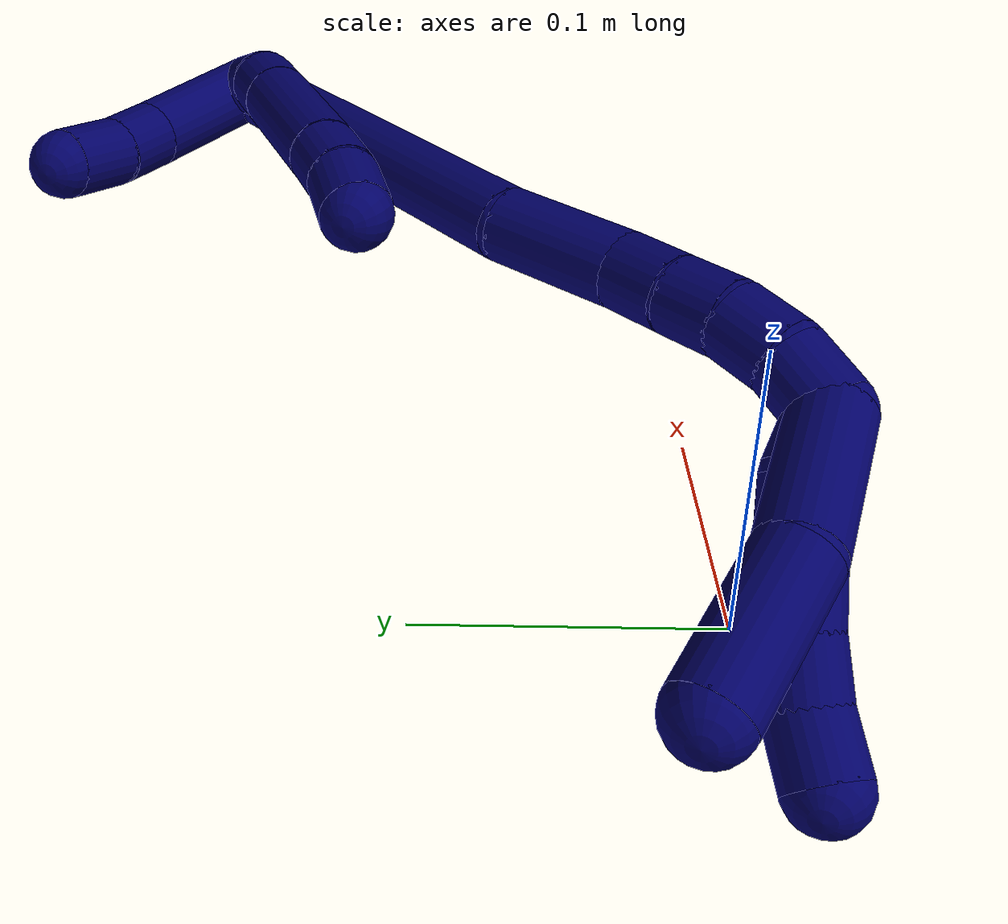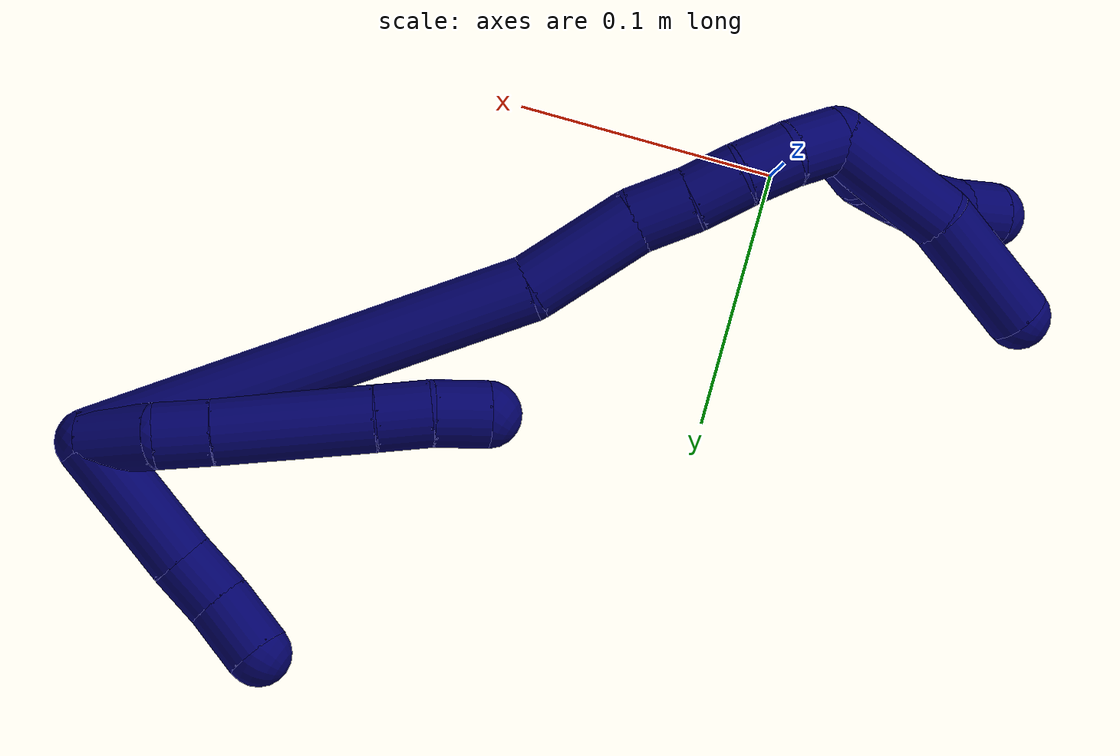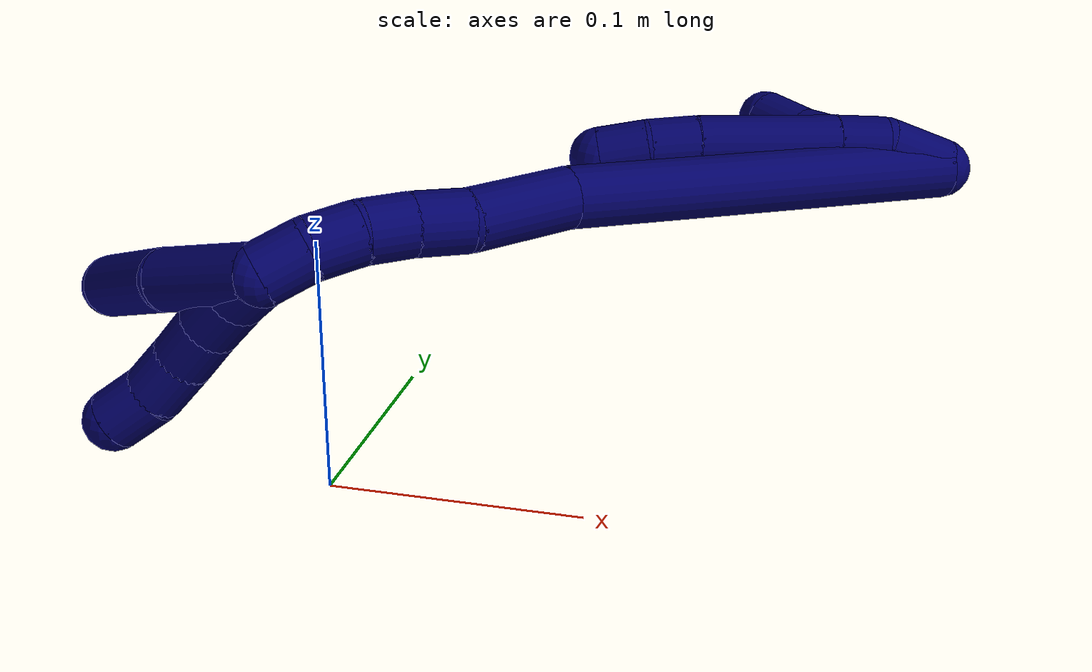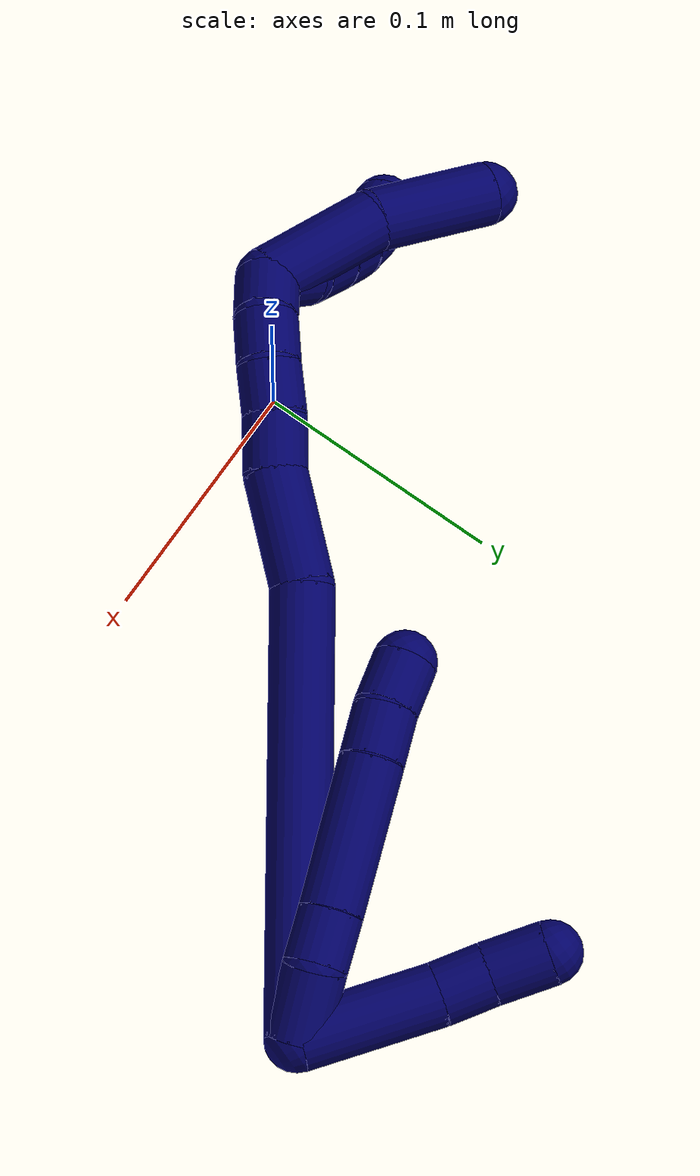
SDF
<sdf version="1.7">
 <world name="default">
  <model name="7">
   <static>0</static>
   <link name="7">
    <collision name="collision-cylinder-e_1_2_8">
     <pose>0.001461 -0.009329 0.01038 0.732112 0.104283 0.040006</pose>
     <geometry><cylinder><radius>0.0125</radius><length>0.028065</length></cylinder></geometry>
     <surface>
      <friction><ode><mu>1.16</mu><mu2>1.16</mu2><slip1>0</slip1><slip2>0</slip2></ode></friction>
      <contact><ode><kp>1e+06</kp><kd>1</kd><max_vel>0</max_vel><min_depth>0.001</min_depth></ode></contact>
     </surface>
    </collision>
    <visual name="visual-cylinder-e_1_2_8">
     <pose>0.001461 -0.009329 0.01038 0.732112 0.104283 0.040006</pose>
     <geometry><cylinder><radius>0.0125</radius><length>0.028065</length></cylinder></geometry>
     <material><ambient>0.003922 0 0.403922 1</ambient></material>
    </visual>
    <collision name="collision-cylinder-e_2_8_9">
     <pose>0.000745 -0.02474 0.029128 0.628512 -0.207389 -0.067624</pose>
     <geometry><cylinder><radius>0.0125</radius><length>0.02114</length></cylinder></geometry>
     <surface>
      <friction><ode><mu>1.16</mu><mu2>1.16</mu2><slip1>0</slip1><slip2>0</slip2></ode></friction>
      <contact><ode><kp>1e+06</kp><kd>1</kd><max_vel>0</max_vel><min_depth>0.001</min_depth></ode></contact>
     </surface>
    </collision>
    <visual name="visual-cylinder-e_2_8_9">
     <pose>0.000745 -0.02474 0.029128 0.628512 -0.207389 -0.067624</pose>
     <geometry><cylinder><radius>0.0125</radius><length>0.02114</length></cylinder></geometry>
     <material><ambient>0.003922 0 0.403922 1</ambient></material>
    </visual>
    <collision name="collision-cylinder-e_3_9_10">
     <pose>-0.008649 -0.047895 0.060733 0.63367 -0.245253 -0.080775</pose>
     <geometry><cylinder><radius>0.0125</radius><length>0.059451</length></cylinder></geometry>
     <surface>
      <friction><ode><mu>1.16</mu><mu2>1.16</mu2><slip1>0</slip1><slip2>0</slip2></ode></friction>
      <contact><ode><kp>1e+06</kp><kd>1</kd><max_vel>0</max_vel><min_depth>0.001</min_depth></ode></contact>
     </surface>
    </collision>
    <visual name="visual-cylinder-e_3_9_10">
     <pose>-0.008649 -0.047895 0.060733 0.63367 -0.245253 -0.080775</pose>
     <geometry><cylinder><radius>0.0125</radius><length>0.059451</length></cylinder></geometry>
     <material><ambient>0.003922 0 0.403922 1</ambient></material>
    </visual>
    <collision name="collision-cylinder-e_4_10_11">
     <pose>-0.019061 -0.070705 0.091944 0.623568 -0.314417 -0.10209</pose>
     <geometry><cylinder><radius>0.0125</radius><length>0.020657</length></cylinder></geometry>
     <surface>
      <friction><ode><mu>1.16</mu><mu2>1.16</mu2><slip1>0</slip1><slip2>0</slip2></ode></friction>
      <contact><ode><kp>1e+06</kp><kd>1</kd><max_vel>0</max_vel><min_depth>0.001</min_depth></ode></contact>
     </surface>
    </collision>
    <visual name="visual-cylinder-e_4_10_11">
     <pose>-0.019061 -0.070705 0.091944 0.623568 -0.314417 -0.10209</pose>
     <geometry><cylinder><radius>0.0125</radius><length>0.020657</length></cylinder></geometry>
     <material><ambient>0.003922 0 0.403922 1</ambient></material>
    </visual>
    <collision name="collision-cylinder-e_5_11_6">
     <pose>-0.026263 -0.080793 0.108401 0.474096 -0.397952 -0.097354</pose>
     <geometry><cylinder><radius>0.0125</radius><length>0.020686</length></cylinder></geometry>
     <surface>
      <friction><ode><mu>1.16</mu><mu2>1.16</mu2><slip1>0</slip1><slip2>0</slip2></ode></friction>
      <contact><ode><kp>1e+06</kp><kd>1</kd><max_vel>0</max_vel><min_depth>0.001</min_depth></ode></contact>
     </surface>
    </collision>
    <visual name="visual-cylinder-e_5_11_6">
     <pose>-0.026263 -0.080793 0.108401 0.474096 -0.397952 -0.097354</pose>
     <geometry><cylinder><radius>0.0125</radius><length>0.020686</length></cylinder></geometry>
     <material><ambient>0.003922 0 0.403922 1</ambient></material>
    </visual>
    <collision name="collision-cylinder-e_1_2_12">
     <pose>0.000627 0.008884 0.026182 -0.327133 0.022686 -0.003744</pose>
     <geometry><cylinder><radius>0.0125</radius><length>0.055311</length></cylinder></geometry>
     <surface>
      <friction><ode><mu>1.16</mu><mu2>1.16</mu2><slip1>0</slip1><slip2>0</slip2></ode></friction>
      <contact><ode><kp>1e+06</kp><kd>1</kd><max_vel>0</max_vel><min_depth>0.001</min_depth></ode></contact>
     </surface>
    </collision>
    <visual name="visual-cylinder-e_1_2_12">
     <pose>0.000627 0.008884 0.026182 -0.327133 0.022686 -0.003744</pose>
     <geometry><cylinder><radius>0.0125</radius><length>0.055311</length></cylinder></geometry>
     <material><ambient>0.003922 0 0.403922 1</ambient></material>
    </visual>
    <collision name="collision-cylinder-e_2_12_13">
     <pose>0.001822 0.020261 0.06228 -0.246264 0.055426 -0.006861</pose>
     <geometry><cylinder><radius>0.0125</radius><length>0.020479</length></cylinder></geometry>
     <surface>
      <friction><ode><mu>1.16</mu><mu2>1.16</mu2><slip1>0</slip1><slip2>0</slip2></ode></friction>
      <contact><ode><kp>1e+06</kp><kd>1</kd><max_vel>0</max_vel><min_depth>0.001</min_depth></ode></contact>
     </surface>
    </collision>
    <visual name="visual-cylinder-e_2_12_13">
     <pose>0.001822 0.020261 0.06228 -0.246264 0.055426 -0.006861</pose>
     <geometry><cylinder><radius>0.0125</radius><length>0.020479</length></cylinder></geometry>
     <material><ambient>0.003922 0 0.403922 1</ambient></material>
    </visual>
    <collision name="collision-cylinder-e_3_13_5">
     <pose>0.00468 0.0259 0.083657 -0.267942 0.190382 -0.025736</pose>
     <geometry><cylinder><radius>0.0125</radius><length>0.02421</length></cylinder></geometry>
     <surface>
      <friction><ode><mu>1.16</mu><mu2>1.16</mu2><slip1>0</slip1><slip2>0</slip2></ode></friction>
      <contact><ode><kp>1e+06</kp><kd>1</kd><max_vel>0</max_vel><min_depth>0.001</min_depth></ode></contact>
     </surface>
    </collision>
    <visual name="visual-cylinder-e_3_13_5">
     <pose>0.00468 0.0259 0.083657 -0.267942 0.190382 -0.025736</pose>
     <geometry><cylinder><radius>0.0125</radius><length>0.02421</length></cylinder></geometry>
     <material><ambient>0.003922 0 0.403922 1</ambient></material>
    </visual>
    <collision name="collision-cylinder-e_1_2_14">
     <pose>-0.024477 -0.064038 0.051856 0.890125 -0.288744 -0.138469</pose>
     <geometry><cylinder><radius>0.0125</radius><length>0.171918</length></cylinder></geometry>
     <surface>
      <friction><ode><mu>1.16</mu><mu2>1.16</mu2><slip1>0</slip1><slip2>0</slip2></ode></friction>
      <contact><ode><kp>1e+06</kp><kd>1</kd><max_vel>0</max_vel><min_depth>0.001</min_depth></ode></contact>
     </surface>
    </collision>
    <visual name="visual-cylinder-e_1_2_14">
     <pose>-0.024477 -0.064038 0.051856 0.890125 -0.288744 -0.138469</pose>
     <geometry><cylinder><radius>0.0125</radius><length>0.171918</length></cylinder></geometry>
     <material><ambient>0.003922 0 0.403922 1</ambient></material>
    </visual>
    <collision name="collision-cylinder-e_2_14_15">
     <pose>-0.057312 -0.147271 0.112773 1.12976 -0.375114 -0.239414</pose>
     <geometry><cylinder><radius>0.0125</radius><length>0.045627</length></cylinder></geometry>
     <surface>
      <friction><ode><mu>1.16</mu><mu2>1.16</mu2><slip1>0</slip1><slip2>0</slip2></ode></friction>
      <contact><ode><kp>1e+06</kp><kd>1</kd><max_vel>0</max_vel><min_depth>0.001</min_depth></ode></contact>
     </surface>
    </collision>
    <visual name="visual-cylinder-e_2_14_15">
     <pose>-0.057312 -0.147271 0.112773 1.12976 -0.375114 -0.239414</pose>
     <geometry><cylinder><radius>0.0125</radius><length>0.045627</length></cylinder></geometry>
     <material><ambient>0.003922 0 0.403922 1</ambient></material>
    </visual>
    <collision name="collision-cylinder-e_3_15_16">
     <pose>-0.068646 -0.175064 0.128349 0.92231 -0.269186 -0.134366</pose>
     <geometry><cylinder><radius>0.0125</radius><length>0.022378</length></cylinder></geometry>
     <surface>
      <friction><ode><mu>1.16</mu><mu2>1.16</mu2><slip1>0</slip1><slip2>0</slip2></ode></friction>
      <contact><ode><kp>1e+06</kp><kd>1</kd><max_vel>0</max_vel><min_depth>0.001</min_depth></ode></contact>
     </surface>
    </collision>
    <visual name="visual-cylinder-e_3_15_16">
     <pose>-0.068646 -0.175064 0.128349 0.92231 -0.269186 -0.134366</pose>
     <geometry><cylinder><radius>0.0125</radius><length>0.022378</length></cylinder></geometry>
     <material><ambient>0.003922 0 0.403922 1</ambient></material>
    </visual>
    <collision name="collision-cylinder-e_4_16_17">
     <pose>-0.074908 -0.191672 0.139872 1.01204 -0.334729 -0.186695</pose>
     <geometry><cylinder><radius>0.0125</radius><length>0.020005</length></cylinder></geometry>
     <surface>
      <friction><ode><mu>1.16</mu><mu2>1.16</mu2><slip1>0</slip1><slip2>0</slip2></ode></friction>
      <contact><ode><kp>1e+06</kp><kd>1</kd><max_vel>0</max_vel><min_depth>0.001</min_depth></ode></contact>
     </surface>
    </collision>
    <visual name="visual-cylinder-e_4_16_17">
     <pose>-0.074908 -0.191672 0.139872 1.01204 -0.334729 -0.186695</pose>
     <geometry><cylinder><radius>0.0125</radius><length>0.020005</length></cylinder></geometry>
     <material><ambient>0.003922 0 0.403922 1</ambient></material>
    </visual>
    <collision name="collision-cylinder-e_5_17_18">
     <pose>-0.083043 -0.206701 0.150111 0.9304 -0.505883 -0.25804</pose>
     <geometry><cylinder><radius>0.0125</radius><length>0.020013</length></cylinder></geometry>
     <surface>
      <friction><ode><mu>1.16</mu><mu2>1.16</mu2><slip1>0</slip1><slip2>0</slip2></ode></friction>
      <contact><ode><kp>1e+06</kp><kd>1</kd><max_vel>0</max_vel><min_depth>0.001</min_depth></ode></contact>
     </surface>
    </collision>
    <visual name="visual-cylinder-e_5_17_18">
     <pose>-0.083043 -0.206701 0.150111 0.9304 -0.505883 -0.25804</pose>
     <geometry><cylinder><radius>0.0125</radius><length>0.020013</length></cylinder></geometry>
     <material><ambient>0.003922 0 0.403922 1</ambient></material>
    </visual>
    <collision name="collision-cylinder-e_6_18_1">
     <pose>-0.094465 -0.218935 0.160835 0.759397 -0.714706 -0.295831</pose>
     <geometry><cylinder><radius>0.0125</radius><length>0.020058</length></cylinder></geometry>
     <surface>
      <friction><ode><mu>1.16</mu><mu2>1.16</mu2><slip1>0</slip1><slip2>0</slip2></ode></friction>
      <contact><ode><kp>1e+06</kp><kd>1</kd><max_vel>0</max_vel><min_depth>0.001</min_depth></ode></contact>
     </surface>
    </collision>
    <visual name="visual-cylinder-e_6_18_1">
     <pose>-0.094465 -0.218935 0.160835 0.759397 -0.714706 -0.295831</pose>
     <geometry><cylinder><radius>0.0125</radius><length>0.020058</length></cylinder></geometry>
     <material><ambient>0.003922 0 0.403922 1</ambient></material>
    </visual>
    <collision name="collision-cylinder-e_1_1_19">
     <pose>-0.107703 -0.220536 0.190165 -0.150445 -0.269737 0.020452</pose>
     <geometry><cylinder><radius>0.0125</radius><length>0.050028</length></cylinder></geometry>
     <surface>
      <friction><ode><mu>1.16</mu><mu2>1.16</mu2><slip1>0</slip1><slip2>0</slip2></ode></friction>
      <contact><ode><kp>1e+06</kp><kd>1</kd><max_vel>0</max_vel><min_depth>0.001</min_depth></ode></contact>
     </surface>
    </collision>
    <visual name="visual-cylinder-e_1_1_19">
     <pose>-0.107703 -0.220536 0.190165 -0.150445 -0.269737 0.020452</pose>
     <geometry><cylinder><radius>0.0125</radius><length>0.050028</length></cylinder></geometry>
     <material><ambient>0.003922 0 0.403922 1</ambient></material>
    </visual>
    <collision name="collision-cylinder-e_2_19_4">
     <pose>-0.120856 -0.207374 0.236162 -0.40688 -0.262639 0.054481</pose>
     <geometry><cylinder><radius>0.0125</radius><length>0.049972</length></cylinder></geometry>
     <surface>
      <friction><ode><mu>1.16</mu><mu2>1.16</mu2><slip1>0</slip1><slip2>0</slip2></ode></friction>
      <contact><ode><kp>1e+06</kp><kd>1</kd><max_vel>0</max_vel><min_depth>0.001</min_depth></ode></contact>
     </surface>
    </collision>
    <visual name="visual-cylinder-e_2_19_4">
     <pose>-0.120856 -0.207374 0.236162 -0.40688 -0.262639 0.054481</pose>
     <geometry><cylinder><radius>0.0125</radius><length>0.049972</length></cylinder></geometry>
     <material><ambient>0.003922 0 0.403922 1</ambient></material>
    </visual>
    <collision name="collision-cylinder-e_1_1_20">
     <pose>-0.106483 -0.219928 0.173575 -0.527522 -0.575817 0.159605</pose>
     <geometry><cylinder><radius>0.0125</radius><length>0.02</length></cylinder></geometry>
     <surface>
      <friction><ode><mu>1.16</mu><mu2>1.16</mu2><slip1>0</slip1><slip2>0</slip2></ode></friction>
      <contact><ode><kp>1e+06</kp><kd>1</kd><max_vel>0</max_vel><min_depth>0.001</min_depth></ode></contact>
     </surface>
    </collision>
    <visual name="visual-cylinder-e_1_1_20">
     <pose>-0.106483 -0.219928 0.173575 -0.527522 -0.575817 0.159605</pose>
     <geometry><cylinder><radius>0.0125</radius><length>0.02</length></cylinder></geometry>
     <material><ambient>0.003922 0 0.403922 1</ambient></material>
    </visual>
    <collision name="collision-cylinder-e_2_20_21">
     <pose>-0.119454 -0.213843 0.187139 -0.286755 -0.851964 0.130832</pose>
     <geometry><cylinder><radius>0.0125</radius><length>0.02</length></cylinder></geometry>
     <surface>
      <friction><ode><mu>1.16</mu><mu2>1.16</mu2><slip1>0</slip1><slip2>0</slip2></ode></friction>
      <contact><ode><kp>1e+06</kp><kd>1</kd><max_vel>0</max_vel><min_depth>0.001</min_depth></ode></contact>
     </surface>
    </collision>
    <visual name="visual-cylinder-e_2_20_21">
     <pose>-0.119454 -0.213843 0.187139 -0.286755 -0.851964 0.130832</pose>
     <geometry><cylinder><radius>0.0125</radius><length>0.02</length></cylinder></geometry>
     <material><ambient>0.003922 0 0.403922 1</ambient></material>
    </visual>
    <collision name="collision-cylinder-e_3_21_22">
     <pose>-0.134947 -0.210392 0.199286 -0.265891 -0.921908 0.13264</pose>
     <geometry><cylinder><radius>0.0125</radius><length>0.02</length></cylinder></geometry>
     <surface>
      <friction><ode><mu>1.16</mu><mu2>1.16</mu2><slip1>0</slip1><slip2>0</slip2></ode></friction>
      <contact><ode><kp>1e+06</kp><kd>1</kd><max_vel>0</max_vel><min_depth>0.001</min_depth></ode></contact>
     </surface>
    </collision>
    <visual name="visual-cylinder-e_3_21_22">
     <pose>-0.134947 -0.210392 0.199286 -0.265891 -0.921908 0.13264</pose>
     <geometry><cylinder><radius>0.0125</radius><length>0.02</length></cylinder></geometry>
     <material><ambient>0.003922 0 0.403922 1</ambient></material>
    </visual>
    <collision name="collision-cylinder-e_4_22_23">
     <pose>-0.151231 -0.208486 0.21066 -0.057356 -0.982138 0.030678</pose>
     <geometry><cylinder><radius>0.0125</radius><length>0.02</length></cylinder></geometry>
     <surface>
      <friction><ode><mu>1.16</mu><mu2>1.16</mu2><slip1>0</slip1><slip2>0</slip2></ode></friction>
      <contact><ode><kp>1e+06</kp><kd>1</kd><max_vel>0</max_vel><min_depth>0.001</min_depth></ode></contact>
     </surface>
    </collision>
    <visual name="visual-cylinder-e_4_22_23">
     <pose>-0.151231 -0.208486 0.21066 -0.057356 -0.982138 0.030678</pose>
     <geometry><cylinder><radius>0.0125</radius><length>0.02</length></cylinder></geometry>
     <material><ambient>0.003922 0 0.403922 1</ambient></material>
    </visual>
    <collision name="collision-cylinder-e_5_23_3">
     <pose>-0.166832 -0.209683 0.222885 0.22299 -0.815991 -0.096714</pose>
     <geometry><cylinder><radius>0.0125</radius><length>0.02</length></cylinder></geometry>
     <surface>
      <friction><ode><mu>1.16</mu><mu2>1.16</mu2><slip1>0</slip1><slip2>0</slip2></ode></friction>
      <contact><ode><kp>1e+06</kp><kd>1</kd><max_vel>0</max_vel><min_depth>0.001</min_depth></ode></contact>
     </surface>
    </collision>
    <visual name="visual-cylinder-e_5_23_3">
     <pose>-0.166832 -0.209683 0.222885 0.22299 -0.815991 -0.096714</pose>
     <geometry><cylinder><radius>0.0125</radius><length>0.02</length></cylinder></geometry>
     <material><ambient>0.003922 0 0.403922 1</ambient></material>
    </visual>
    <collision name="collision-sphere-3">
     <pose>-0.174116 -0.211198 0.229567 0 -0 0</pose>
     <geometry><sphere><radius>0.0125</radius></sphere></geometry>
     <surface>
      <friction><ode><mu>1.16</mu><mu2>1.16</mu2><slip1>0</slip1><slip2>0</slip2></ode></friction>
      <contact><ode><kp>1e+06</kp><kd>1</kd><max_vel>0</max_vel><min_depth>0.001</min_depth></ode></contact>
     </surface>
    </collision>
    <visual name="visual-sphere-3">
     <pose>-0.174116 -0.211198 0.229567 0 -0 0</pose>
     <geometry><sphere><radius>0.0125</radius></sphere></geometry>
     <material><ambient>0.003922 0 0.403922 1</ambient></material>
    </visual>
    <collision name="collision-sphere-23">
     <pose>-0.159548 -0.208168 0.216203 0 -0 0</pose>
     <geometry><sphere><radius>0.0125</radius></sphere></geometry>
     <surface>
      <friction><ode><mu>1.16</mu><mu2>1.16</mu2><slip1>0</slip1><slip2>0</slip2></ode></friction>
      <contact><ode><kp>1e+06</kp><kd>1</kd><max_vel>0</max_vel><min_depth>0.001</min_depth></ode></contact>
     </surface>
    </collision>
    <visual name="visual-sphere-23">
     <pose>-0.159548 -0.208168 0.216203 0 -0 0</pose>
     <geometry><sphere><radius>0.0125</radius></sphere></geometry>
     <material><ambient>0.003922 0 0.403922 1</ambient></material>
    </visual>
    <collision name="collision-sphere-22">
     <pose>-0.142915 -0.208805 0.205116 0 -0 0</pose>
     <geometry><sphere><radius>0.0125</radius></sphere></geometry>
     <surface>
      <friction><ode><mu>1.16</mu><mu2>1.16</mu2><slip1>0</slip1><slip2>0</slip2></ode></friction>
      <contact><ode><kp>1e+06</kp><kd>1</kd><max_vel>0</max_vel><min_depth>0.001</min_depth></ode></contact>
     </surface>
    </collision>
    <visual name="visual-sphere-22">
     <pose>-0.142915 -0.208805 0.205116 0 -0 0</pose>
     <geometry><sphere><radius>0.0125</radius></sphere></geometry>
     <material><ambient>0.003922 0 0.403922 1</ambient></material>
    </visual>
    <collision name="collision-sphere-21">
     <pose>-0.126979 -0.21198 0.193455 0 -0 0</pose>
     <geometry><sphere><radius>0.0125</radius></sphere></geometry>
     <surface>
      <friction><ode><mu>1.16</mu><mu2>1.16</mu2><slip1>0</slip1><slip2>0</slip2></ode></friction>
      <contact><ode><kp>1e+06</kp><kd>1</kd><max_vel>0</max_vel><min_depth>0.001</min_depth></ode></contact>
     </surface>
    </collision>
    <visual name="visual-sphere-21">
     <pose>-0.126979 -0.21198 0.193455 0 -0 0</pose>
     <geometry><sphere><radius>0.0125</radius></sphere></geometry>
     <material><ambient>0.003922 0 0.403922 1</ambient></material>
    </visual>
    <collision name="collision-sphere-20">
     <pose>-0.111928 -0.215705 0.180823 0 -0 0</pose>
     <geometry><sphere><radius>0.0125</radius></sphere></geometry>
     <surface>
      <friction><ode><mu>1.16</mu><mu2>1.16</mu2><slip1>0</slip1><slip2>0</slip2></ode></friction>
      <contact><ode><kp>1e+06</kp><kd>1</kd><max_vel>0</max_vel><min_depth>0.001</min_depth></ode></contact>
     </surface>
    </collision>
    <visual name="visual-sphere-20">
     <pose>-0.111928 -0.215705 0.180823 0 -0 0</pose>
     <geometry><sphere><radius>0.0125</radius></sphere></geometry>
     <material><ambient>0.003922 0 0.403922 1</ambient></material>
    </visual>
    <collision name="collision-sphere-4">
     <pose>-0.127343 -0.197825 0.258321 0 -0 0</pose>
     <geometry><sphere><radius>0.0125</radius></sphere></geometry>
     <surface>
      <friction><ode><mu>1.16</mu><mu2>1.16</mu2><slip1>0</slip1><slip2>0</slip2></ode></friction>
      <contact><ode><kp>1e+06</kp><kd>1</kd><max_vel>0</max_vel><min_depth>0.001</min_depth></ode></contact>
     </surface>
    </collision>
    <visual name="visual-sphere-4">
     <pose>-0.127343 -0.197825 0.258321 0 -0 0</pose>
     <geometry><sphere><radius>0.0125</radius></sphere></geometry>
     <material><ambient>0.003922 0 0.403922 1</ambient></material>
    </visual>
    <collision name="collision-sphere-6">
     <pose>-0.030271 -0.085146 0.116884 0 -0 0</pose>
     <geometry><sphere><radius>0.0125</radius></sphere></geometry>
     <surface>
      <friction><ode><mu>1.16</mu><mu2>1.16</mu2><slip1>0</slip1><slip2>0</slip2></ode></friction>
      <contact><ode><kp>1e+06</kp><kd>1</kd><max_vel>0</max_vel><min_depth>0.001</min_depth></ode></contact>
     </surface>
    </collision>
    <visual name="visual-sphere-6">
     <pose>-0.030271 -0.085146 0.116884 0 -0 0</pose>
     <geometry><sphere><radius>0.0125</radius></sphere></geometry>
     <material><ambient>0.003922 0 0.403922 1</ambient></material>
    </visual>
    <collision name="collision-sphere-11">
     <pose>-0.022255 -0.07644 0.099918 0 -0 0</pose>
     <geometry><sphere><radius>0.0125</radius></sphere></geometry>
     <surface>
      <friction><ode><mu>1.16</mu><mu2>1.16</mu2><slip1>0</slip1><slip2>0</slip2></ode></friction>
      <contact><ode><kp>1e+06</kp><kd>1</kd><max_vel>0</max_vel><min_depth>0.001</min_depth></ode></contact>
     </surface>
    </collision>
    <visual name="visual-sphere-11">
     <pose>-0.022255 -0.07644 0.099918 0 -0 0</pose>
     <geometry><sphere><radius>0.0125</radius></sphere></geometry>
     <material><ambient>0.003922 0 0.403922 1</ambient></material>
    </visual>
    <collision name="collision-sphere-10">
     <pose>-0.015866 -0.064969 0.08397 0 -0 0</pose>
     <geometry><sphere><radius>0.0125</radius></sphere></geometry>
     <surface>
      <friction><ode><mu>1.16</mu><mu2>1.16</mu2><slip1>0</slip1><slip2>0</slip2></ode></friction>
      <contact><ode><kp>1e+06</kp><kd>1</kd><max_vel>0</max_vel><min_depth>0.001</min_depth></ode></contact>
     </surface>
    </collision>
    <visual name="visual-sphere-10">
     <pose>-0.015866 -0.064969 0.08397 0 -0 0</pose>
     <geometry><sphere><radius>0.0125</radius></sphere></geometry>
     <material><ambient>0.003922 0 0.403922 1</ambient></material>
    </visual>
    <collision name="collision-sphere-9">
     <pose>-0.001432 -0.030821 0.037495 0 -0 0</pose>
     <geometry><sphere><radius>0.0125</radius></sphere></geometry>
     <surface>
      <friction><ode><mu>1.16</mu><mu2>1.16</mu2><slip1>0</slip1><slip2>0</slip2></ode></friction>
      <contact><ode><kp>1e+06</kp><kd>1</kd><max_vel>0</max_vel><min_depth>0.001</min_depth></ode></contact>
     </surface>
    </collision>
    <visual name="visual-sphere-9">
     <pose>-0.001432 -0.030821 0.037495 0 -0 0</pose>
     <geometry><sphere><radius>0.0125</radius></sphere></geometry>
     <material><ambient>0.003922 0 0.403922 1</ambient></material>
    </visual>
    <collision name="collision-sphere-2">
     <geometry><sphere><radius>0.0125</radius></sphere></geometry>
     <surface>
      <friction><ode><mu>1.16</mu><mu2>1.16</mu2><slip1>0</slip1><slip2>0</slip2></ode></friction>
      <contact><ode><kp>1e+06</kp><kd>1</kd><max_vel>0</max_vel><min_depth>0.001</min_depth></ode></contact>
     </surface>
    </collision>
    <visual name="visual-sphere-2">
     <geometry><sphere><radius>0.0125</radius></sphere></geometry>
     <material><ambient>0.003922 0 0.403922 1</ambient></material>
    </visual>
    <collision name="collision-sphere-19">
     <pose>-0.114369 -0.216923 0.214002 0 -0 0</pose>
     <geometry><sphere><radius>0.0125</radius></sphere></geometry>
     <surface>
      <friction><ode><mu>1.16</mu><mu2>1.16</mu2><slip1>0</slip1><slip2>0</slip2></ode></friction>
      <contact><ode><kp>1e+06</kp><kd>1</kd><max_vel>0</max_vel><min_depth>0.001</min_depth></ode></contact>
     </surface>
    </collision>
    <visual name="visual-sphere-19">
     <pose>-0.114369 -0.216923 0.214002 0 -0 0</pose>
     <geometry><sphere><radius>0.0125</radius></sphere></geometry>
     <material><ambient>0.003922 0 0.403922 1</ambient></material>
    </visual>
    <collision name="collision-sphere-8">
     <pose>0.002921 -0.018658 0.020761 0 -0 0</pose>
     <geometry><sphere><radius>0.0125</radius></sphere></geometry>
     <surface>
      <friction><ode><mu>1.16</mu><mu2>1.16</mu2><slip1>0</slip1><slip2>0</slip2></ode></friction>
      <contact><ode><kp>1e+06</kp><kd>1</kd><max_vel>0</max_vel><min_depth>0.001</min_depth></ode></contact>
     </surface>
    </collision>
    <visual name="visual-sphere-8">
     <pose>0.002921 -0.018658 0.020761 0 -0 0</pose>
     <geometry><sphere><radius>0.0125</radius></sphere></geometry>
     <material><ambient>0.003922 0 0.403922 1</ambient></material>
    </visual>
    <collision name="collision-sphere-12">
     <pose>0.001255 0.017768 0.052364 0 -0 0</pose>
     <geometry><sphere><radius>0.0125</radius></sphere></geometry>
     <surface>
      <friction><ode><mu>1.16</mu><mu2>1.16</mu2><slip1>0</slip1><slip2>0</slip2></ode></friction>
      <contact><ode><kp>1e+06</kp><kd>1</kd><max_vel>0</max_vel><min_depth>0.001</min_depth></ode></contact>
     </surface>
    </collision>
    <visual name="visual-sphere-12">
     <pose>0.001255 0.017768 0.052364 0 -0 0</pose>
     <geometry><sphere><radius>0.0125</radius></sphere></geometry>
     <material><ambient>0.003922 0 0.403922 1</ambient></material>
    </visual>
    <collision name="collision-sphere-13">
     <pose>0.002389 0.022753 0.072195 0 -0 0</pose>
     <geometry><sphere><radius>0.0125</radius></sphere></geometry>
     <surface>
      <friction><ode><mu>1.16</mu><mu2>1.16</mu2><slip1>0</slip1><slip2>0</slip2></ode></friction>
      <contact><ode><kp>1e+06</kp><kd>1</kd><max_vel>0</max_vel><min_depth>0.001</min_depth></ode></contact>
     </surface>
    </collision>
    <visual name="visual-sphere-13">
     <pose>0.002389 0.022753 0.072195 0 -0 0</pose>
     <geometry><sphere><radius>0.0125</radius></sphere></geometry>
     <material><ambient>0.003922 0 0.403922 1</ambient></material>
    </visual>
    <collision name="collision-sphere-5">
     <pose>0.006971 0.029047 0.095119 0 -0 0</pose>
     <geometry><sphere><radius>0.0125</radius></sphere></geometry>
     <surface>
      <friction><ode><mu>1.16</mu><mu2>1.16</mu2><slip1>0</slip1><slip2>0</slip2></ode></friction>
      <contact><ode><kp>1e+06</kp><kd>1</kd><max_vel>0</max_vel><min_depth>0.001</min_depth></ode></contact>
     </surface>
    </collision>
    <visual name="visual-sphere-5">
     <pose>0.006971 0.029047 0.095119 0 -0 0</pose>
     <geometry><sphere><radius>0.0125</radius></sphere></geometry>
     <material><ambient>0.003922 0 0.403922 1</ambient></material>
    </visual>
    <collision name="collision-sphere-14">
     <pose>-0.048953 -0.128075 0.103712 0 -0 0</pose>
     <geometry><sphere><radius>0.0125</radius></sphere></geometry>
     <surface>
      <friction><ode><mu>1.16</mu><mu2>1.16</mu2><slip1>0</slip1><slip2>0</slip2></ode></friction>
      <contact><ode><kp>1e+06</kp><kd>1</kd><max_vel>0</max_vel><min_depth>0.001</min_depth></ode></contact>
     </surface>
    </collision>
    <visual name="visual-sphere-14">
     <pose>-0.048953 -0.128075 0.103712 0 -0 0</pose>
     <geometry><sphere><radius>0.0125</radius></sphere></geometry>
     <material><ambient>0.003922 0 0.403922 1</ambient></material>
    </visual>
    <collision name="collision-sphere-15">
     <pose>-0.06567 -0.166468 0.121834 0 -0 0</pose>
     <geometry><sphere><radius>0.0125</radius></sphere></geometry>
     <surface>
      <friction><ode><mu>1.16</mu><mu2>1.16</mu2><slip1>0</slip1><slip2>0</slip2></ode></friction>
      <contact><ode><kp>1e+06</kp><kd>1</kd><max_vel>0</max_vel><min_depth>0.001</min_depth></ode></contact>
     </surface>
    </collision>
    <visual name="visual-sphere-15">
     <pose>-0.06567 -0.166468 0.121834 0 -0 0</pose>
     <geometry><sphere><radius>0.0125</radius></sphere></geometry>
     <material><ambient>0.003922 0 0.403922 1</ambient></material>
    </visual>
    <collision name="collision-sphere-16">
     <pose>-0.071622 -0.183661 0.134864 0 -0 0</pose>
     <geometry><sphere><radius>0.0125</radius></sphere></geometry>
     <surface>
      <friction><ode><mu>1.16</mu><mu2>1.16</mu2><slip1>0</slip1><slip2>0</slip2></ode></friction>
      <contact><ode><kp>1e+06</kp><kd>1</kd><max_vel>0</max_vel><min_depth>0.001</min_depth></ode></contact>
     </surface>
    </collision>
    <visual name="visual-sphere-16">
     <pose>-0.071622 -0.183661 0.134864 0 -0 0</pose>
     <geometry><sphere><radius>0.0125</radius></sphere></geometry>
     <material><ambient>0.003922 0 0.403922 1</ambient></material>
    </visual>
    <collision name="collision-sphere-17">
     <pose>-0.078194 -0.199682 0.144881 0 -0 0</pose>
     <geometry><sphere><radius>0.0125</radius></sphere></geometry>
     <surface>
      <friction><ode><mu>1.16</mu><mu2>1.16</mu2><slip1>0</slip1><slip2>0</slip2></ode></friction>
      <contact><ode><kp>1e+06</kp><kd>1</kd><max_vel>0</max_vel><min_depth>0.001</min_depth></ode></contact>
     </surface>
    </collision>
    <visual name="visual-sphere-17">
     <pose>-0.078194 -0.199682 0.144881 0 -0 0</pose>
     <geometry><sphere><radius>0.0125</radius></sphere></geometry>
     <material><ambient>0.003922 0 0.403922 1</ambient></material>
    </visual>
    <collision name="collision-sphere-18">
     <pose>-0.087892 -0.21372 0.155341 0 -0 0</pose>
     <geometry><sphere><radius>0.0125</radius></sphere></geometry>
     <surface>
      <friction><ode><mu>1.16</mu><mu2>1.16</mu2><slip1>0</slip1><slip2>0</slip2></ode></friction>
      <contact><ode><kp>1e+06</kp><kd>1</kd><max_vel>0</max_vel><min_depth>0.001</min_depth></ode></contact>
     </surface>
    </collision>
    <visual name="visual-sphere-18">
     <pose>-0.087892 -0.21372 0.155341 0 -0 0</pose>
     <geometry><sphere><radius>0.0125</radius></sphere></geometry>
     <material><ambient>0.003922 0 0.403922 1</ambient></material>
    </visual>
    <collision name="collision-sphere-1">
     <pose>-0.101038 -0.22415 0.166328 0 -0 0</pose>
     <geometry><sphere><radius>0.0125</radius></sphere></geometry>
     <surface>
      <friction><ode><mu>1.16</mu><mu2>1.16</mu2><slip1>0</slip1><slip2>0</slip2></ode></friction>
      <contact><ode><kp>1e+06</kp><kd>1</kd><max_vel>0</max_vel><min_depth>0.001</min_depth></ode></contact>
     </surface>
    </collision>
    <visual name="visual-sphere-1">
     <pose>-0.101038 -0.22415 0.166328 0 -0 0</pose>
     <geometry><sphere><radius>0.0125</radius></sphere></geometry>
     <material><ambient>0.003922 0 0.403922 1</ambient></material>
    </visual>
    <inertial>
     <pose>-0.05284 -0.109176 0.107407 0 -0 0</pose>
     <mass>0.75</mass>
     <inertia>
      <ixx>0.000419</ixx>
      <ixy>0</ixy>
      <ixz>0</ixz>
      <iyy>0.000282</iyy>
      <iyz>0</iyz>
      <izz>0.000522</izz>
     </inertia>
    </inertial>
   </link>
   <pose>0.218133 0.166967 0.093721 -1.42599 -1.19194 1.11883</pose>
  </model>
 </world>
</sdf>
